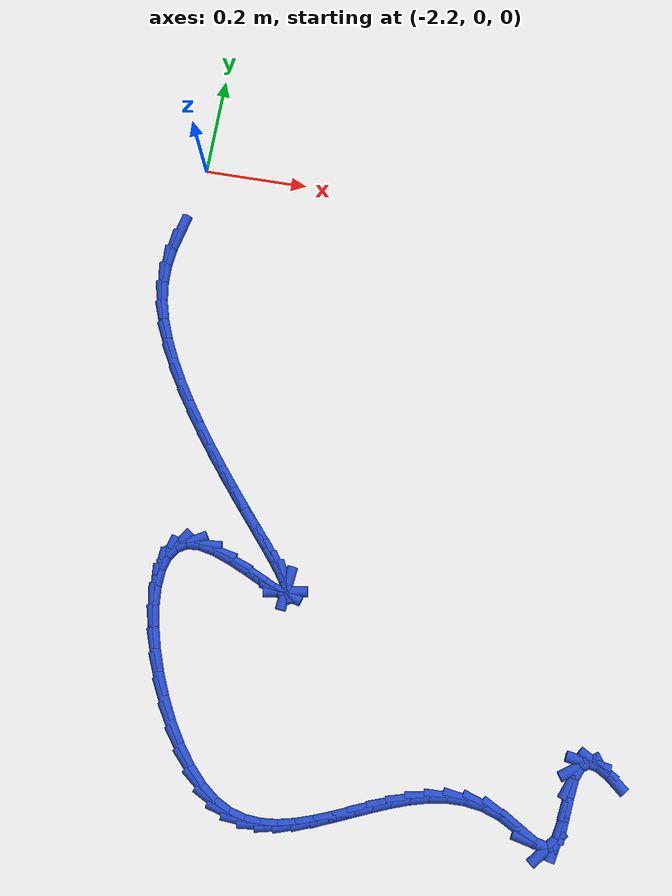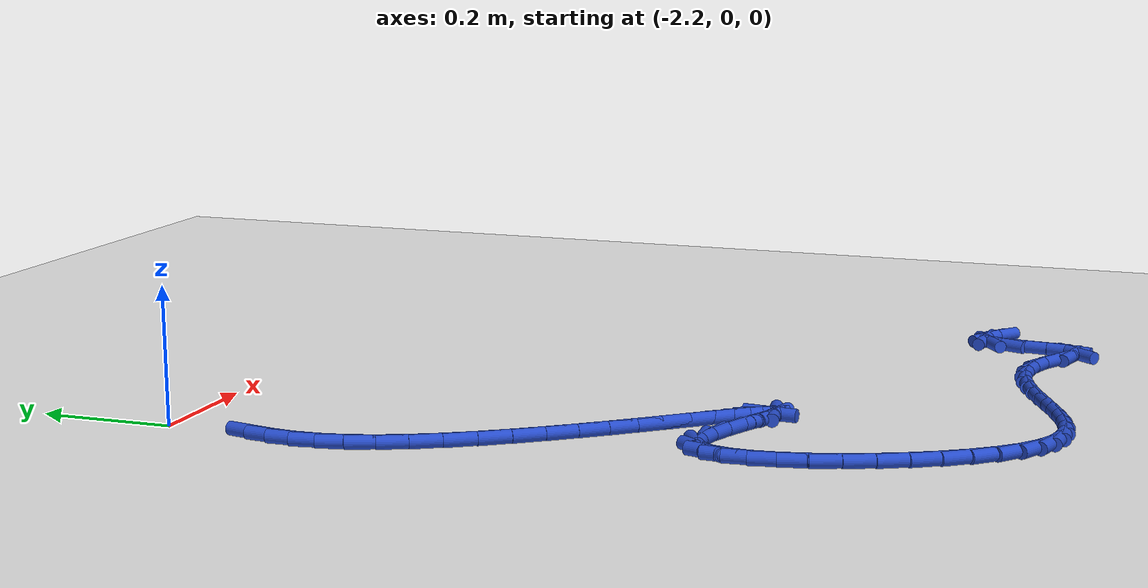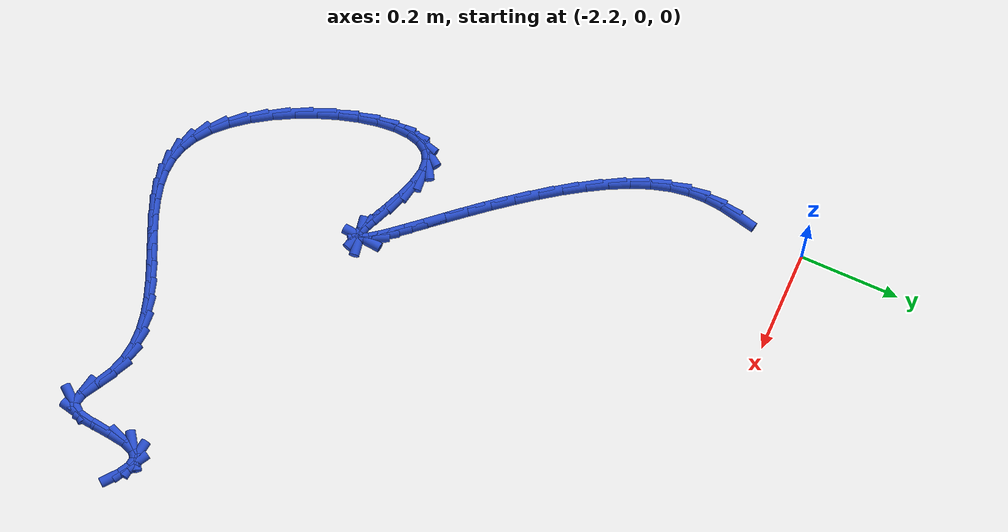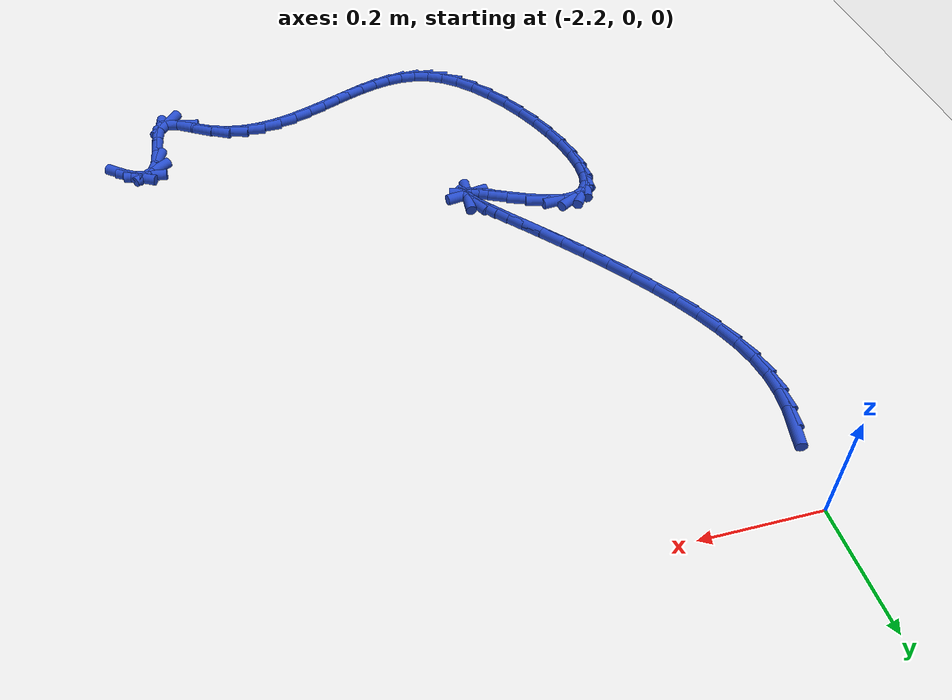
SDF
<sdf version="1.6">
 <world name="default">
  <model name="ground_plane">
   <static>1</static>
   <link name="link">
    <collision name="collision">
     <geometry><plane><normal>0 0 1</normal><size>100 100</size></plane></geometry>
     <surface><friction><ode><mu>100</mu><mu2>50</mu2></ode></friction></surface>
    </collision>
    <visual name="visual">
     <cast_shadows>0</cast_shadows>
     <geometry><plane><normal>0 0 1</normal><size>100 100</size></plane></geometry>
     <material>
      <script><uri>file://media/materials/scripts/gazebo.material</uri><name>Gazebo/WhiteGlow</name></script>
     </material>
    </visual>
   </link>
  </model>
  <model name="line">
   <link name="link_135">
    <pose>-2.2238090466570815 -0.1444551363388636 0.01 0 1.57 1.3600643785371545</pose>
    <collision name="collision">
     <geometry><cylinder><radius>0.01</radius><length>0.08</length></cylinder></geometry>
    </collision>
    <visual name="visual">
     <material>
      <script><name>Gazebo/Blue</name><uri>file://media/materials/scripts/gazebo.material</uri></script>
     </material>
     <geometry><cylinder><radius>0.01</radius><length>0.08</length></cylinder></geometry>
    </visual>
   </link>
   <link name="link_136">
    <pose>-2.230965597868588 -0.17791138432851292 0.01 0 1.57 1.4744066030010519</pose>
    <collision name="collision">
     <geometry><cylinder><radius>0.01</radius><length>0.08</length></cylinder></geometry>
    </collision>
    <visual name="visual">
     <material>
      <script><name>Gazebo/Blue</name><uri>file://media/materials/scripts/gazebo.material</uri></script>
     </material>
     <geometry><cylinder><radius>0.01</radius><length>0.08</length></cylinder></geometry>
    </visual>
   </link>
   <link name="link_137">
    <pose>-2.2343030243551403 -0.21242838429003752 0.01 0 1.57 -1.5432958919420257</pose>
    <collision name="collision">
     <geometry><cylinder><radius>0.01</radius><length>0.08</length></cylinder></geometry>
    </collision>
    <visual name="visual">
     <material>
      <script><name>Gazebo/Blue</name><uri>file://media/materials/scripts/gazebo.material</uri></script>
     </material>
     <geometry><cylinder><radius>0.01</radius><length>0.08</length></cylinder></geometry>
    </visual>
   </link>
   <link name="link_138">
    <pose>-2.2333224443778126 -0.2480762849294872 0.01 0 1.57 -1.4147448919698866</pose>
    <collision name="collision">
     <geometry><cylinder><radius>0.01</radius><length>0.08</length></cylinder></geometry>
    </collision>
    <visual name="visual">
     <material>
      <script><name>Gazebo/Blue</name><uri>file://media/materials/scripts/gazebo.material</uri></script>
     </material>
     <geometry><cylinder><radius>0.01</radius><length>0.08</length></cylinder></geometry>
    </visual>
   </link>
   <link name="link_139">
    <pose>-2.2275249761976776 -0.284925234952912 0.01 0 1.57 -1.2902518905154325</pose>
    <collision name="collision">
     <geometry><cylinder><radius>0.01</radius><length>0.08</length></cylinder></geometry>
    </collision>
    <visual name="visual">
     <material>
      <script><name>Gazebo/Blue</name><uri>file://media/materials/scripts/gazebo.material</uri></script>
     </material>
     <geometry><cylinder><radius>0.01</radius><length>0.08</length></cylinder></geometry>
    </visual>
   </link>
   <link name="link_140">
    <pose>-2.216556464663279 -0.3229913282600474 0.01 0 1.57 -1.188285135078608</pose>
    <collision name="collision">
     <geometry><cylinder><radius>0.01</radius><length>0.08</length></cylinder></geometry>
    </collision>
    <visual name="visual">
     <material>
      <script><name>Gazebo/Blue</name><uri>file://media/materials/scripts/gazebo.material</uri></script>
     </material>
     <geometry><cylinder><radius>0.01</radius><length>0.08</length></cylinder></geometry>
    </visual>
   </link>
   <link name="link_141">
    <pose>-2.200865961052724 -0.3619906643353638 0.01 0 1.57 -1.108894191961893</pose>
    <collision name="collision">
     <geometry><cylinder><radius>0.01</radius><length>0.08</length></cylinder></geometry>
    </collision>
    <visual name="visual">
     <material>
      <script><name>Gazebo/Blue</name><uri>file://media/materials/scripts/gazebo.material</uri></script>
     </material>
     <geometry><cylinder><radius>0.01</radius><length>0.08</length></cylinder></geometry>
    </visual>
   </link>
   <link name="link_142">
    <pose>-2.181179566697947 -0.40153586556723797 0.01 0 1.57 -1.046573571626374</pose>
    <collision name="collision">
     <geometry><cylinder><radius>0.01</radius><length>0.08</length></cylinder></geometry>
    </collision>
    <visual name="visual">
     <material>
      <script><name>Gazebo/Blue</name><uri>file://media/materials/scripts/gazebo.material</uri></script>
     </material>
     <geometry><cylinder><radius>0.01</radius><length>0.08</length></cylinder></geometry>
    </visual>
   </link>
   <link name="link_143">
    <pose>-2.1582236432044155 -0.4412394571329139 0.01 0 1.57 -0.9972639469664759</pose>
    <collision name="collision">
     <geometry><cylinder><radius>0.01</radius><length>0.08</length></cylinder></geometry>
    </collision>
    <visual name="visual">
     <material>
      <script><name>Gazebo/Blue</name><uri>file://media/materials/scripts/gazebo.material</uri></script>
     </material>
     <geometry><cylinder><radius>0.01</radius><length>0.08</length></cylinder></geometry>
    </visual>
   </link>
   <link name="link_144">
    <pose>-2.132724552177599 -0.4807139642096354 0.01 0 1.57 -0.9580811384357988</pose>
    <collision name="collision">
     <geometry><cylinder><radius>0.01</radius><length>0.08</length></cylinder></geometry>
    </collision>
    <visual name="visual">
     <material>
      <script><name>Gazebo/Blue</name><uri>file://media/materials/scripts/gazebo.material</uri></script>
     </material>
     <geometry><cylinder><radius>0.01</radius><length>0.08</length></cylinder></geometry>
    </visual>
   </link>
   <link name="link_145">
    <pose>-2.105408655222964 -0.5195719119746464 0.01 0 1.57 -0.9270263469501691</pose>
    <collision name="collision">
     <geometry><cylinder><radius>0.01</radius><length>0.08</length></cylinder></geometry>
    </collision>
    <visual name="visual">
     <material>
      <script><name>Gazebo/Blue</name><uri>file://media/materials/scripts/gazebo.material</uri></script>
     </material>
     <geometry><cylinder><radius>0.01</radius><length>0.08</length></cylinder></geometry>
    </visual>
   </link>
   <link name="link_146">
    <pose>-2.077002313945978 -0.5574258256051913 0.01 0 1.57 -0.902771964500921</pose>
    <collision name="collision">
     <geometry><cylinder><radius>0.01</radius><length>0.08</length></cylinder></geometry>
    </collision>
    <visual name="visual">
     <material>
      <script><name>Gazebo/Blue</name><uri>file://media/materials/scripts/gazebo.material</uri></script>
     </material>
     <geometry><cylinder><radius>0.01</radius><length>0.08</length></cylinder></geometry>
    </visual>
   </link>
   <link name="link_147">
    <pose>-2.0482318899521124 -0.5938882302785123 0.01 0 1.57 -0.8845350944421078</pose>
    <collision name="collision">
     <geometry><cylinder><radius>0.01</radius><length>0.08</length></cylinder></geometry>
    </collision>
    <visual name="visual">
     <material>
      <script><name>Gazebo/Blue</name><uri>file://media/materials/scripts/gazebo.material</uri></script>
     </material>
     <geometry><cylinder><radius>0.01</radius><length>0.08</length></cylinder></geometry>
    </visual>
   </link>
   <link name="link_148">
    <pose>-2.019823744846833 -0.6285716511718542 0.01 0 1.57 -0.8720417350258177</pose>
    <collision name="collision">
     <geometry><cylinder><radius>0.01</radius><length>0.08</length></cylinder></geometry>
    </collision>
    <visual name="visual">
     <material>
      <script><name>Gazebo/Blue</name><uri>file://media/materials/scripts/gazebo.material</uri></script>
     </material>
     <geometry><cylinder><radius>0.01</radius><length>0.08</length></cylinder></geometry>
    </visual>
   </link>
   <link name="link_149">
    <pose>-1.992504240235607 -0.6610886134624603 0.01 0 1.57 -0.8656065483909299</pose>
    <collision name="collision">
     <geometry><cylinder><radius>0.01</radius><length>0.08</length></cylinder></geometry>
    </collision>
    <visual name="visual">
     <material>
      <script><name>Gazebo/Blue</name><uri>file://media/materials/scripts/gazebo.material</uri></script>
     </material>
     <geometry><cylinder><radius>0.01</radius><length>0.08</length></cylinder></geometry>
    </visual>
   </link>
   <link name="link_150">
    <pose>-1.9669997377239046 -0.6910516423275751 0.01 0 1.57 -0.8664148256192203</pose>
    <collision name="collision">
     <geometry><cylinder><radius>0.01</radius><length>0.08</length></cylinder></geometry>
    </collision>
    <visual name="visual">
     <material>
      <script><name>Gazebo/Blue</name><uri>file://media/materials/scripts/gazebo.material</uri></script>
     </material>
     <geometry><cylinder><radius>0.01</radius><length>0.08</length></cylinder></geometry>
    </visual>
   </link>
   <link name="link_151">
    <pose>-1.9440365989171926 -0.7180732629444421 0.01 0 1.57 -0.8772682171726931</pose>
    <collision name="collision">
     <geometry><cylinder><radius>0.01</radius><length>0.08</length></cylinder></geometry>
    </collision>
    <visual name="visual">
     <material>
      <script><name>Gazebo/Blue</name><uri>file://media/materials/scripts/gazebo.material</uri></script>
     </material>
     <geometry><cylinder><radius>0.01</radius><length>0.08</length></cylinder></geometry>
    </visual>
   </link>
   <link name="link_152">
    <pose>-1.9243411854209396 -0.741766000490305 0.01 0 1.57 -0.904653794235859</pose>
    <collision name="collision">
     <geometry><cylinder><radius>0.01</radius><length>0.08</length></cylinder></geometry>
    </collision>
    <visual name="visual">
     <material>
      <script><name>Gazebo/Blue</name><uri>file://media/materials/scripts/gazebo.material</uri></script>
     </material>
     <geometry><cylinder><radius>0.01</radius><length>0.08</length></cylinder></geometry>
    </visual>
   </link>
   <link name="link_153">
    <pose>-1.9086398588406135 -0.7617423801424079 0.01 0 1.57 -0.9655842886563571</pose>
    <collision name="collision">
     <geometry><cylinder><radius>0.01</radius><length>0.08</length></cylinder></geometry>
    </collision>
    <visual name="visual">
     <material>
      <script><name>Gazebo/Blue</name><uri>file://media/materials/scripts/gazebo.material</uri></script>
     </material>
     <geometry><cylinder><radius>0.01</radius><length>0.08</length></cylinder></geometry>
    </visual>
   </link>
   <link name="link_154">
    <pose>-1.8976589807816828 -0.7776149270779946 0.01 0 1.57 -1.1182133454952685</pose>
    <collision name="collision">
     <geometry><cylinder><radius>0.01</radius><length>0.08</length></cylinder></geometry>
    </collision>
    <visual name="visual">
     <material>
      <script><name>Gazebo/Blue</name><uri>file://media/materials/scripts/gazebo.material</uri></script>
     </material>
     <geometry><cylinder><radius>0.01</radius><length>0.08</length></cylinder></geometry>
    </visual>
   </link>
   <link name="link_155">
    <pose>-1.8921249128496147 -0.7889961664743091 0.01 0 1.57 1.4728244865240394</pose>
    <collision name="collision">
     <geometry><cylinder><radius>0.01</radius><length>0.08</length></cylinder></geometry>
    </collision>
    <visual name="visual">
     <material>
      <script><name>Gazebo/Blue</name><uri>file://media/materials/scripts/gazebo.material</uri></script>
     </material>
     <geometry><cylinder><radius>0.01</radius><length>0.08</length></cylinder></geometry>
    </visual>
   </link>
   <link name="link_156">
    <pose>-1.8927640166498785 -0.7954986235085946 0.01 0 1.57 0.16253531541640456</pose>
    <collision name="collision">
     <geometry><cylinder><radius>0.01</radius><length>0.08</length></cylinder></geometry>
    </collision>
    <visual name="visual">
     <material>
      <script><name>Gazebo/Blue</name><uri>file://media/materials/scripts/gazebo.material</uri></script>
     </material>
     <geometry><cylinder><radius>0.01</radius><length>0.08</length></cylinder></geometry>
    </visual>
   </link>
   <link name="link_157">
    <pose>-1.9003026537879415 -0.7967348233580952 0.01 0 1.57 -0.2834624753143168</pose>
    <collision name="collision">
     <geometry><cylinder><radius>0.01</radius><length>0.08</length></cylinder></geometry>
    </collision>
    <visual name="visual">
     <material>
      <script><name>Gazebo/Blue</name><uri>file://media/materials/scripts/gazebo.material</uri></script>
     </material>
     <geometry><cylinder><radius>0.01</radius><length>0.08</length></cylinder></geometry>
    </visual>
   </link>
   <link name="link_158">
    <pose>-1.915467185869272 -0.7923172912000547 0.01 0 1.57 -0.4110729419712204</pose>
    <collision name="collision">
     <geometry><cylinder><radius>0.01</radius><length>0.08</length></cylinder></geometry>
    </collision>
    <visual name="visual">
     <material>
      <script><name>Gazebo/Blue</name><uri>file://media/materials/scripts/gazebo.material</uri></script>
     </material>
     <geometry><cylinder><radius>0.01</radius><length>0.08</length></cylinder></geometry>
    </visual>
   </link>
   <link name="link_159">
    <pose>-1.9385691610096498 -0.7822469686917005 0.01 0 1.57 -0.4365605880799678</pose>
    <collision name="collision">
     <geometry><cylinder><radius>0.01</radius><length>0.08</length></cylinder></geometry>
    </collision>
    <visual name="visual">
     <material>
      <script><name>Gazebo/Blue</name><uri>file://media/materials/scripts/gazebo.material</uri></script>
     </material>
     <geometry><cylinder><radius>0.01</radius><length>0.08</length></cylinder></geometry>
    </visual>
   </link>
   <link name="link_160">
    <pose>-1.967590813251257 -0.7687058836789566 0.01 0 1.57 -0.41294480253812926</pose>
    <collision name="collision">
     <geometry><cylinder><radius>0.01</radius><length>0.08</length></cylinder></geometry>
    </collision>
    <visual name="visual">
     <material>
      <script><name>Gazebo/Blue</name><uri>file://media/materials/scripts/gazebo.material</uri></script>
     </material>
     <geometry><cylinder><radius>0.01</radius><length>0.08</length></cylinder></geometry>
    </visual>
   </link>
   <link name="link_161">
    <pose>-1.9997019056008694 -0.7546368327568511 0.01 0 1.57 -0.3455673541165178</pose>
    <collision name="collision">
     <geometry><cylinder><radius>0.01</radius><length>0.08</length></cylinder></geometry>
    </collision>
    <visual name="visual">
     <material>
      <script><name>Gazebo/Blue</name><uri>file://media/materials/scripts/gazebo.material</uri></script>
     </material>
     <geometry><cylinder><radius>0.01</radius><length>0.08</length></cylinder></geometry>
    </visual>
   </link>
   <link name="link_162">
    <pose>-2.032071362405239 -0.7429833978115878 0.01 0 1.57 -0.2081786410493634</pose>
    <collision name="collision">
     <geometry><cylinder><radius>0.01</radius><length>0.08</length></cylinder></geometry>
    </collision>
    <visual name="visual">
     <material>
      <script><name>Gazebo/Blue</name><uri>file://media/materials/scripts/gazebo.material</uri></script>
     </material>
     <geometry><cylinder><radius>0.01</radius><length>0.08</length></cylinder></geometry>
    </visual>
   </link>
   <link name="link_163">
    <pose>-2.0618681080111214 -0.7366891607293715 0.01 0 1.57 0.07643638224249631</pose>
    <collision name="collision">
     <geometry><cylinder><radius>0.01</radius><length>0.08</length></cylinder></geometry>
    </collision>
    <visual name="visual">
     <material>
      <script><name>Gazebo/Blue</name><uri>file://media/materials/scripts/gazebo.material</uri></script>
     </material>
     <geometry><cylinder><radius>0.01</radius><length>0.08</length></cylinder></geometry>
    </visual>
   </link>
   <link name="link_164">
    <pose>-2.0863658124715836 -0.7385653319117667 0.01 0 1.57 0.5320532770977402</pose>
    <collision name="collision">
     <geometry><cylinder><radius>0.01</radius><length>0.08</length></cylinder></geometry>
    </collision>
    <visual name="visual">
     <material>
      <script><name>Gazebo/Blue</name><uri>file://media/materials/scripts/gazebo.material</uri></script>
     </material>
     <geometry><cylinder><radius>0.01</radius><length>0.08</length></cylinder></geometry>
    </visual>
   </link>
   <link name="link_165">
    <pose>-2.1045444983279697 -0.7492667334925811 0.01 0 1.57 0.9849115300693072</pose>
    <collision name="collision">
     <geometry><cylinder><radius>0.01</radius><length>0.08</length></cylinder></geometry>
    </collision>
    <visual name="visual">
     <material>
      <script><name>Gazebo/Blue</name><uri>file://media/materials/scripts/gazebo.material</uri></script>
     </material>
     <geometry><cylinder><radius>0.01</radius><length>0.08</length></cylinder></geometry>
    </visual>
   </link>
   <link name="link_166">
    <pose>-2.116772699341624 -0.767693468504493 0.01 0 1.57 1.3094624826346049</pose>
    <collision name="collision">
     <geometry><cylinder><radius>0.01</radius><length>0.08</length></cylinder></geometry>
    </collision>
    <visual name="visual">
     <material>
      <script><name>Gazebo/Blue</name><uri>file://media/materials/scripts/gazebo.material</uri></script>
     </material>
     <geometry><cylinder><radius>0.01</radius><length>0.08</length></cylinder></geometry>
    </visual>
   </link>
   <link name="link_167">
    <pose>-2.1234592788624207 -0.7926946738098518 0.01 0 1.57 1.519769797687351</pose>
    <collision name="collision">
     <geometry><cylinder><radius>0.01</radius><length>0.08</length></cylinder></geometry>
    </collision>
    <visual name="visual">
     <material>
      <script><name>Gazebo/Blue</name><uri>file://media/materials/scripts/gazebo.material</uri></script>
     </material>
     <geometry><cylinder><radius>0.01</radius><length>0.08</length></cylinder></geometry>
    </visual>
   </link>
   <link name="link_168">
    <pose>-2.125013100240234 -0.8231194862710071 0.01 0 1.57 -1.4796862534414337</pose>
    <collision name="collision">
     <geometry><cylinder><radius>0.01</radius><length>0.08</length></cylinder></geometry>
    </collision>
    <visual name="visual">
     <material>
      <script><name>Gazebo/Blue</name><uri>file://media/materials/scripts/gazebo.material</uri></script>
     </material>
     <geometry><cylinder><radius>0.01</radius><length>0.08</length></cylinder></geometry>
    </visual>
   </link>
   <link name="link_169">
    <pose>-2.121843026824941 -0.8578170427503082 0.01 0 1.57 -1.3754045717466914</pose>
    <collision name="collision">
     <geometry><cylinder><radius>0.01</radius><length>0.08</length></cylinder></geometry>
    </collision>
    <visual name="visual">
     <material>
      <script><name>Gazebo/Blue</name><uri>file://media/materials/scripts/gazebo.material</uri></script>
     </material>
     <geometry><cylinder><radius>0.01</radius><length>0.08</length></cylinder></geometry>
    </visual>
   </link>
   <link name="link_170">
    <pose>-2.114357921966415 -0.8956364801101051 0.01 0 1.57 -1.2919722994052878</pose>
    <collision name="collision">
     <geometry><cylinder><radius>0.01</radius><length>0.08</length></cylinder></geometry>
    </collision>
    <visual name="visual">
     <material>
      <script><name>Gazebo/Blue</name><uri>file://media/materials/scripts/gazebo.material</uri></script>
     </material>
     <geometry><cylinder><radius>0.01</radius><length>0.08</length></cylinder></geometry>
    </visual>
   </link>
   <link name="link_171">
    <pose>-2.102966649014532 -0.9354269352127478 0.01 0 1.57 -1.219394493677778</pose>
    <collision name="collision">
     <geometry><cylinder><radius>0.01</radius><length>0.08</length></cylinder></geometry>
    </collision>
    <visual name="visual">
     <material>
      <script><name>Gazebo/Blue</name><uri>file://media/materials/scripts/gazebo.material</uri></script>
     </material>
     <geometry><cylinder><radius>0.01</radius><length>0.08</length></cylinder></geometry>
    </visual>
   </link>
   <link name="link_172">
    <pose>-2.088078071319166 -0.976037544920585 0.01 0 1.57 -1.1510215266656096</pose>
    <collision name="collision">
     <geometry><cylinder><radius>0.01</radius><length>0.08</length></cylinder></geometry>
    </collision>
    <visual name="visual">
     <material>
      <script><name>Gazebo/Blue</name><uri>file://media/materials/scripts/gazebo.material</uri></script>
     </material>
     <geometry><cylinder><radius>0.01</radius><length>0.08</length></cylinder></geometry>
    </visual>
   </link>
   <link name="link_173">
    <pose>-2.0701010522301924 -1.0163174460959685 0.01 0 1.57 -1.081558565601075</pose>
    <collision name="collision">
     <geometry><cylinder><radius>0.01</radius><length>0.08</length></cylinder></geometry>
    </collision>
    <visual name="visual">
     <material>
      <script><name>Gazebo/Blue</name><uri>file://media/materials/scripts/gazebo.material</uri></script>
     </material>
     <geometry><cylinder><radius>0.01</radius><length>0.08</length></cylinder></geometry>
    </visual>
   </link>
   <link name="link_174">
    <pose>-2.049444455097488 -1.055115775601245 0.01 0 1.57 -1.0057880554735625</pose>
    <collision name="collision">
     <geometry><cylinder><radius>0.01</radius><length>0.08</length></cylinder></geometry>
    </collision>
    <visual name="visual">
     <material>
      <script><name>Gazebo/Blue</name><uri>file://media/materials/scripts/gazebo.material</uri></script>
     </material>
     <geometry><cylinder><radius>0.01</radius><length>0.08</length></cylinder></geometry>
    </visual>
   </link>
   <link name="link_175">
    <pose>-2.0265171432709255 -1.0912816702987655 0.01 0 1.57 -0.9174432398186563</pose>
    <collision name="collision">
     <geometry><cylinder><radius>0.01</radius><length>0.08</length></cylinder></geometry>
    </collision>
    <visual name="visual">
     <material>
      <script><name>Gazebo/Blue</name><uri>file://media/materials/scripts/gazebo.material</uri></script>
     </material>
     <geometry><cylinder><radius>0.01</radius><length>0.08</length></cylinder></geometry>
    </visual>
   </link>
   <link name="link_176">
    <pose>-2.001727980100382 -1.12366426705088 0.01 0 1.57 -0.8078617211095019</pose>
    <collision name="collision">
     <geometry><cylinder><radius>0.01</radius><length>0.08</length></cylinder></geometry>
    </collision>
    <visual name="visual">
     <material>
      <script><name>Gazebo/Blue</name><uri>file://media/materials/scripts/gazebo.material</uri></script>
     </material>
     <geometry><cylinder><radius>0.01</radius><length>0.08</length></cylinder></geometry>
    </visual>
   </link>
   <link name="link_177">
    <pose>-1.975485828935731 -1.1511127027199377 0.01 0 1.57 -0.6642491996029188</pose>
    <collision name="collision">
     <geometry><cylinder><radius>0.01</radius><length>0.08</length></cylinder></geometry>
    </collision>
    <visual name="visual">
     <material>
      <script><name>Gazebo/Blue</name><uri>file://media/materials/scripts/gazebo.material</uri></script>
     </material>
     <geometry><cylinder><radius>0.01</radius><length>0.08</length></cylinder></geometry>
    </visual>
   </link>
   <link name="link_178">
    <pose>-1.9481995531268486 -1.1724761141682885 0.01 0 1.57 -0.473493400066272</pose>
    <collision name="collision">
     <geometry><cylinder><radius>0.01</radius><length>0.08</length></cylinder></geometry>
    </collision>
    <visual name="visual">
     <material>
      <script><name>Gazebo/Blue</name><uri>file://media/materials/scripts/gazebo.material</uri></script>
     </material>
     <geometry><cylinder><radius>0.01</radius><length>0.08</length></cylinder></geometry>
    </visual>
   </link>
   <link name="link_179">
    <pose>-1.9202423501301626 -1.1868005050998733 0.01 0 1.57 -0.262439033985512</pose>
    <collision name="collision">
     <geometry><cylinder><radius>0.01</radius><length>0.08</length></cylinder></geometry>
    </collision>
    <visual name="visual">
     <material>
      <script><name>Gazebo/Blue</name><uri>file://media/materials/scripts/gazebo.material</uri></script>
     </material>
     <geometry><cylinder><radius>0.01</radius><length>0.08</length></cylinder></geometry>
    </visual>
   </link>
   <link name="link_180">
    <pose>-1.891747680477534 -1.1944551672843857 0.01 0 1.57 -0.06541068162506668</pose>
    <collision name="collision">
     <geometry><cylinder><radius>0.01</radius><length>0.08</length></cylinder></geometry>
    </collision>
    <visual name="visual">
     <material>
      <script><name>Gazebo/Blue</name><uri>file://media/materials/scripts/gazebo.material</uri></script>
     </material>
     <geometry><cylinder><radius>0.01</radius><length>0.08</length></cylinder></geometry>
    </visual>
   </link>
   <link name="link_181">
    <pose>-1.862750227100988 -1.1963546202208752 0.01 0 1.57 0.09943185479707632</pose>
    <collision name="collision">
     <geometry><cylinder><radius>0.01</radius><length>0.08</length></cylinder></geometry>
    </collision>
    <visual name="visual">
     <material>
      <script><name>Gazebo/Blue</name><uri>file://media/materials/scripts/gazebo.material</uri></script>
     </material>
     <geometry><cylinder><radius>0.01</radius><length>0.08</length></cylinder></geometry>
    </visual>
   </link>
   <link name="link_182">
    <pose>-1.833284365365264 -1.1934150811031563 0.01 0 1.57 0.22560261179912544</pose>
    <collision name="collision">
     <geometry><cylinder><radius>0.01</radius><length>0.08</length></cylinder></geometry>
    </collision>
    <visual name="visual">
     <material>
      <script><name>Gazebo/Blue</name><uri>file://media/materials/scripts/gazebo.material</uri></script>
     </material>
     <geometry><cylinder><radius>0.01</radius><length>0.08</length></cylinder></geometry>
    </visual>
   </link>
   <link name="link_183">
    <pose>-1.8033844706350999 -1.186552767125043 0.01 0 1.57 0.3148740683655308</pose>
    <collision name="collision">
     <geometry><cylinder><radius>0.01</radius><length>0.08</length></cylinder></geometry>
    </collision>
    <visual name="visual">
     <material>
      <script><name>Gazebo/Blue</name><uri>file://media/materials/scripts/gazebo.material</uri></script>
     </material>
     <geometry><cylinder><radius>0.01</radius><length>0.08</length></cylinder></geometry>
    </visual>
   </link>
   <link name="link_184">
    <pose>-1.773084918275233 -1.176683895480351 0.01 0 1.57 0.371853996620855</pose>
    <collision name="collision">
     <geometry><cylinder><radius>0.01</radius><length>0.08</length></cylinder></geometry>
    </collision>
    <visual name="visual">
     <material>
      <script><name>Gazebo/Blue</name><uri>file://media/materials/scripts/gazebo.material</uri></script>
     </material>
     <geometry><cylinder><radius>0.01</radius><length>0.08</length></cylinder></geometry>
    </visual>
   </link>
   <link name="link_185">
    <pose>-1.7424200836504018 -1.1647246833628941 0.01 0 1.57 0.4007810476851416</pose>
    <collision name="collision">
     <geometry><cylinder><radius>0.01</radius><length>0.08</length></cylinder></geometry>
    </collision>
    <visual name="visual">
     <material>
      <script><name>Gazebo/Blue</name><uri>file://media/materials/scripts/gazebo.material</uri></script>
     </material>
     <geometry><cylinder><radius>0.01</radius><length>0.08</length></cylinder></geometry>
    </visual>
   </link>
   <link name="link_186">
    <pose>-1.711424342125344 -1.1515913479664879 0.01 0 1.57 0.40435892234014936</pose>
    <collision name="collision">
     <geometry><cylinder><radius>0.01</radius><length>0.08</length></cylinder></geometry>
    </collision>
    <visual name="visual">
     <material>
      <script><name>Gazebo/Blue</name><uri>file://media/materials/scripts/gazebo.material</uri></script>
     </material>
     <geometry><cylinder><radius>0.01</radius><length>0.08</length></cylinder></geometry>
    </visual>
   </link>
   <link name="link_187">
    <pose>-1.6801320690647974 -1.138200106484946 0.01 0 1.57 0.38353954532161305</pose>
    <collision name="collision">
     <geometry><cylinder><radius>0.01</radius><length>0.08</length></cylinder></geometry>
    </collision>
    <visual name="visual">
     <material>
      <script><name>Gazebo/Blue</name><uri>file://media/materials/scripts/gazebo.material</uri></script>
     </material>
     <geometry><cylinder><radius>0.01</radius><length>0.08</length></cylinder></geometry>
    </visual>
   </link>
   <link name="link_188">
    <pose>-1.6485776398335004 -1.125467176112084 0.01 0 1.57 0.3376451423332459</pose>
    <collision name="collision">
     <geometry><cylinder><radius>0.01</radius><length>0.08</length></cylinder></geometry>
    </collision>
    <visual name="visual">
     <material>
      <script><name>Gazebo/Blue</name><uri>file://media/materials/scripts/gazebo.material</uri></script>
     </material>
     <geometry><cylinder><radius>0.01</radius><length>0.08</length></cylinder></geometry>
    </visual>
   </link>
   <link name="link_189">
    <pose>-1.6167954297961908 -1.1143087740417161 0.01 0 1.57 0.26470963433598094</pose>
    <collision name="collision">
     <geometry><cylinder><radius>0.01</radius><length>0.08</length></cylinder></geometry>
    </collision>
    <visual name="visual">
     <material>
      <script><name>Gazebo/Blue</name><uri>file://media/materials/scripts/gazebo.material</uri></script>
     </material>
     <geometry><cylinder><radius>0.01</radius><length>0.08</length></cylinder></geometry>
    </visual>
   </link>
   <link name="link_190">
    <pose>-1.5848198143176053 -1.1056411174676568 0.01 0 1.57 0.1622684593062147</pose>
    <collision name="collision">
     <geometry><cylinder><radius>0.01</radius><length>0.08</length></cylinder></geometry>
    </collision>
    <visual name="visual">
     <material>
      <script><name>Gazebo/Blue</name><uri>file://media/materials/scripts/gazebo.material</uri></script>
     </material>
     <geometry><cylinder><radius>0.01</radius><length>0.08</length></cylinder></geometry>
    </visual>
   </link>
   <link name="link_191">
    <pose>-1.5526851687624845 -1.1003804235837213 0.01 0 1.57 0.02905364306657067</pose>
    <collision name="collision">
     <geometry><cylinder><radius>0.01</radius><length>0.08</length></cylinder></geometry>
    </collision>
    <visual name="visual">
     <material>
      <script><name>Gazebo/Blue</name><uri>file://media/materials/scripts/gazebo.material</uri></script>
     </material>
     <geometry><cylinder><radius>0.01</radius><length>0.08</length></cylinder></geometry>
    </visual>
   </link>
   <link name="link_192">
    <pose>-1.520425868495565 -1.0994429095837241 0.01 0 1.57 -0.1322054475872889</pose>
    <collision name="collision">
     <geometry><cylinder><radius>0.01</radius><length>0.08</length></cylinder></geometry>
    </collision>
    <visual name="visual">
     <material>
      <script><name>Gazebo/Blue</name><uri>file://media/materials/scripts/gazebo.material</uri></script>
     </material>
     <geometry><cylinder><radius>0.01</radius><length>0.08</length></cylinder></geometry>
    </visual>
   </link>
   <link name="link_193">
    <pose>-1.4880762888815848 -1.1037447926614798 0.01 0 1.57 -0.3121571487857185</pose>
    <collision name="collision">
     <geometry><cylinder><radius>0.01</radius><length>0.08</length></cylinder></geometry>
    </collision>
    <visual name="visual">
     <material>
      <script><name>Gazebo/Blue</name><uri>file://media/materials/scripts/gazebo.material</uri></script>
     </material>
     <geometry><cylinder><radius>0.01</radius><length>0.08</length></cylinder></geometry>
    </visual>
   </link>
   <link name="link_194">
    <pose>-1.4556708052852823 -1.114202290010803 0.01 0 1.57 -0.4904283409795394</pose>
    <collision name="collision">
     <geometry><cylinder><radius>0.01</radius><length>0.08</length></cylinder></geometry>
    </collision>
    <visual name="visual">
     <material>
      <script><name>Gazebo/Blue</name><uri>file://media/materials/scripts/gazebo.material</uri></script>
     </material>
     <geometry><cylinder><radius>0.01</radius><length>0.08</length></cylinder></geometry>
    </visual>
   </link>
   <link name="link_195">
    <pose>-1.4233212035229736 -1.1314749871281244 0.01 0 1.57 -0.5374945972751071</pose>
    <collision name="collision">
     <geometry><cylinder><radius>0.01</radius><length>0.08</length></cylinder></geometry>
    </collision>
    <visual name="visual">
     <material>
      <script><name>Gazebo/Blue</name><uri>file://media/materials/scripts/gazebo.material</uri></script>
     </material>
     <geometry><cylinder><radius>0.01</radius><length>0.08</length></cylinder></geometry>
    </visual>
   </link>
   <link name="link_196">
    <pose>-1.3931862530891965 -1.1494362941918563 0.01 0 1.57 -0.21755830195328307</pose>
    <collision name="collision">
     <geometry><cylinder><radius>0.01</radius><length>0.08</length></cylinder></geometry>
    </collision>
    <visual name="visual">
     <material>
      <script><name>Gazebo/Blue</name><uri>file://media/materials/scripts/gazebo.material</uri></script>
     </material>
     <geometry><cylinder><radius>0.01</radius><length>0.08</length></cylinder></geometry>
    </visual>
   </link>
   <link name="link_197">
    <pose>-1.3696316332730762 -1.1546432082272027 0.01 0 1.57 0.8756824288761398</pose>
    <collision name="collision">
     <geometry><cylinder><radius>0.01</radius><length>0.08</length></cylinder></geometry>
    </collision>
    <visual name="visual">
     <material>
      <script><name>Gazebo/Blue</name><uri>file://media/materials/scripts/gazebo.material</uri></script>
     </material>
     <geometry><cylinder><radius>0.01</radius><length>0.08</length></cylinder></geometry>
    </visual>
   </link>
   <link name="link_198">
    <pose>-1.3555657967186332 -1.1377770901326134 0.01 0 1.57 1.3532793325049919</pose>
    <collision name="collision">
     <geometry><cylinder><radius>0.01</radius><length>0.08</length></cylinder></geometry>
    </collision>
    <visual name="visual">
     <material>
      <script><name>Gazebo/Blue</name><uri>file://media/materials/scripts/gazebo.material</uri></script>
     </material>
     <geometry><cylinder><radius>0.01</radius><length>0.08</length></cylinder></geometry>
    </visual>
   </link>
   <link name="link_199">
    <pose>-1.3483877532944215 -1.1052992679327591 0.01 0 1.57 1.4637252943594512</pose>
    <collision name="collision">
     <geometry><cylinder><radius>0.01</radius><length>0.08</length></cylinder></geometry>
    </collision>
    <visual name="visual">
     <material>
      <script><name>Gazebo/Blue</name><uri>file://media/materials/scripts/gazebo.material</uri></script>
     </material>
     <geometry><cylinder><radius>0.01</radius><length>0.08</length></cylinder></geometry>
    </visual>
   </link>
   <link name="link_200">
    <pose>-1.344286092037005 -1.0671379177013935 0.01 0 1.57 1.4291464173649842</pose>
    <collision name="collision">
     <geometry><cylinder><radius>0.01</radius><length>0.08</length></cylinder></geometry>
    </collision>
    <visual name="visual">
     <material>
      <script><name>Gazebo/Blue</name><uri>file://media/materials/scripts/gazebo.material</uri></script>
     </material>
     <geometry><cylinder><radius>0.01</radius><length>0.08</length></cylinder></geometry>
    </visual>
   </link>
   <link name="link_201">
    <pose>-1.339449401982949 -1.0332212155122686 0.01 0 1.57 1.1854569568534248</pose>
    <collision name="collision">
     <geometry><cylinder><radius>0.01</radius><length>0.08</length></cylinder></geometry>
    </collision>
    <visual name="visual">
     <material>
      <script><name>Gazebo/Blue</name><uri>file://media/materials/scripts/gazebo.material</uri></script>
     </material>
     <geometry><cylinder><radius>0.01</radius><length>0.08</length></cylinder></geometry>
    </visual>
   </link>
   <link name="link_202">
    <pose>-1.3307134735243236 -1.0116838423255692 0.01 0 1.57 0.5932266342692168</pose>
    <collision name="collision">
     <geometry><cylinder><radius>0.01</radius><length>0.08</length></cylinder></geometry>
    </collision>
    <visual name="visual">
     <material>
      <script><name>Gazebo/Blue</name><uri>file://media/materials/scripts/gazebo.material</uri></script>
     </material>
     <geometry><cylinder><radius>0.01</radius><length>0.08</length></cylinder></geometry>
    </visual>
   </link>
   <link name="link_203">
    <pose>-1.3177088985584728 -1.0029156516216478 0.01 0 1.57 -0.13539910736129512</pose>
    <collision name="collision">
     <geometry><cylinder><radius>0.01</radius><length>0.08</length></cylinder></geometry>
    </collision>
    <visual name="visual">
     <material>
      <script><name>Gazebo/Blue</name><uri>file://media/materials/scripts/gazebo.material</uri></script>
     </material>
     <geometry><cylinder><radius>0.01</radius><length>0.08</length></cylinder></geometry>
    </visual>
   </link>
   <link name="link_204">
    <pose>-1.3008205012367033 -1.0052164025841344 0.01 0 1.57 -0.5198663328450458</pose>
    <collision name="collision">
     <geometry><cylinder><radius>0.01</radius><length>0.08</length></cylinder></geometry>
    </collision>
    <visual name="visual">
     <material>
      <script><name>Gazebo/Blue</name><uri>file://media/materials/scripts/gazebo.material</uri></script>
     </material>
     <geometry><cylinder><radius>0.01</radius><length>0.08</length></cylinder></geometry>
    </visual>
   </link>
   <link name="link_205">
    <pose>-1.2804331173231216 -1.016885822215793 0.01 0 1.57 -0.6885086867415038</pose>
    <collision name="collision">
     <geometry><cylinder><radius>0.01</radius><length>0.08</length></cylinder></geometry>
    </collision>
    <visual name="visual">
     <material>
      <script><name>Gazebo/Blue</name><uri>file://media/materials/scripts/gazebo.material</uri></script>
     </material>
     <geometry><cylinder><radius>0.01</radius><length>0.08</length></cylinder></geometry>
    </visual>
   </link>
  </model>
 </world>
</sdf>
